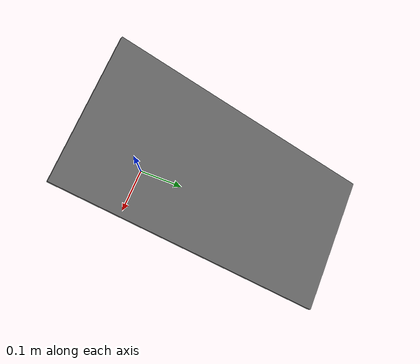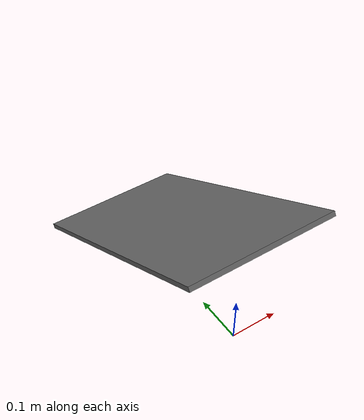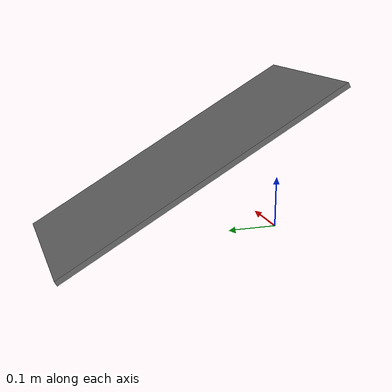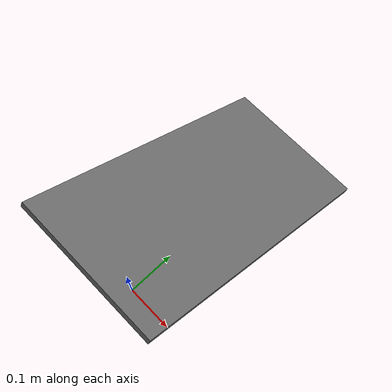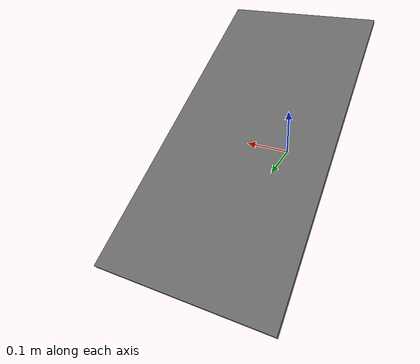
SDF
<?xml version="1.0" ?>
<sdf version="1.5">
  <model name="ramp">
    <link name="ramp">
      <visual name="visual">
        <pose>0 0.2 0.15 -0.525 0 0</pose>
        <geometry>
          <box>
            <size>0.3 0.6 0.01</size>
          </box>
        </geometry>
        <material>
          <diffuse>0.41 0.41 0.41 1.0</diffuse>
        </material>
      </visual>
      <collision name="collision">
        <pose>0 0.2 0.15 -0.525 0 0</pose>
        <geometry>
          <box>
            <size>0.3 0.6 0.01</size>
          </box>
        </geometry>
        <drake:proximity_properties>
          <drake:compliant_hydroelastic/>
          <drake:hydroelastic_modulus>1.0e8</drake:hydroelastic_modulus>
        </drake:proximity_properties>
      </collision>
    </link>
  </model>
</sdf>
